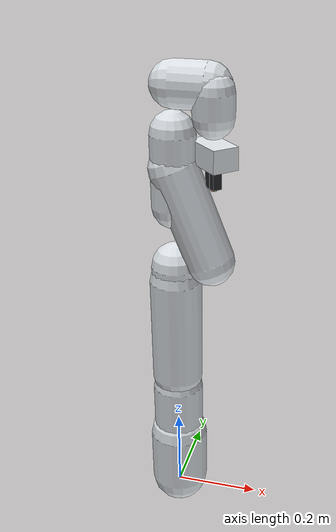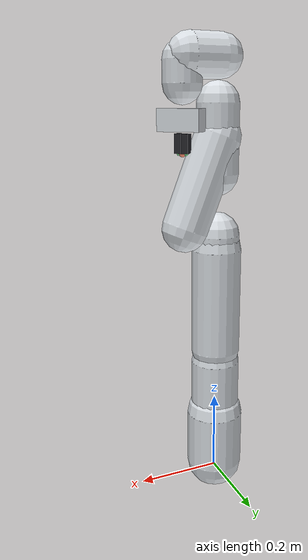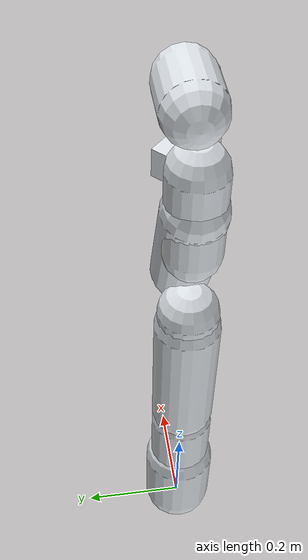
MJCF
<mujoco model="panda">

  <compiler angle="radian" autolimits="true"/>

  <default>
    <default class="panda">
      <joint axis="0 0 1" damping="5" armature="0.1" frictionloss="0.2"/>
      <geom type="capsule" contype="1" conaffinity="2" condim="4"
            friction="1 0.05 0.01" rgba="0.87 0.89 0.91 1" density="0"/>
      <motor gear="1" ctrllimited="true"/>

      <default class="panda_finger">
        <joint type="slide" axis="0 1 0" range="0 0.04" damping="30"
               armature="0.01" frictionloss="1.0"/>
        <!-- High tangential friction: primitive box pads have far less real
             contact area than the rubberized Franka pads, so grasps slip
             without it. -->
        <geom type="box" condim="4" friction="2.0 0.2 0.01"
              rgba="0.15 0.15 0.17 1" density="0"/>
      </default>
    </default>
  </default>

  <worldbody>
    <body name="link0" pos="0 0 0" childclass="panda">
      <inertial pos="-0.041 0 0.05" mass="2.92"
                diaginertia="0.0075 0.0100 0.0090"/>
      <geom name="link0_geom" fromto="0 0 0.02 0 0 0.16" size="0.07"/>

      <body name="link1" pos="0 0 0.333">
        <inertial pos="0.0039 0.0021 -0.0476" mass="2.74"
                  diaginertia="0.0180 0.0180 0.0090"/>
        <joint name="joint1" range="-2.8973 2.8973"/>
        <geom name="link1_geom" fromto="0 0 -0.19 0 0 -0.03" size="0.06"/>

        <body name="link2" quat="1 -1 0 0">
          <inertial pos="-0.0031 -0.0287 0.0035" mass="2.74"
                    diaginertia="0.0180 0.0090 0.0180"/>
          <joint name="joint2" range="-1.7628 1.7628"/>
          <geom name="link2_geom" fromto="0 0 0 0 -0.26 0" size="0.06"/>

          <body name="link3" pos="0 -0.316 0" quat="1 1 0 0">
            <inertial pos="0.0275 0.0393 -0.0665" mass="2.38"
                      diaginertia="0.0090 0.0090 0.0090"/>
            <joint name="joint3" range="-2.8973 2.8973"/>
            <geom name="link3_geom" fromto="0 0 -0.14 0 0 -0.02" size="0.055"/>

            <body name="link4" pos="0.0825 0 0" quat="1 1 0 0">
              <inertial pos="-0.0532 0.1044 0.0275" mass="2.38"
                        diaginertia="0.0090 0.0090 0.0090"/>
              <joint name="joint4" range="-3.0718 -0.0698"/>
              <geom name="link4_geom" fromto="0 0 0 -0.083 0.21 0" size="0.055"/>

              <body name="link5" pos="-0.0825 0.384 0" quat="1 -1 0 0">
                <inertial pos="-0.0120 0.0411 -0.0384" mass="2.74"
                          diaginertia="0.0290 0.0290 0.0060"/>
                <joint name="joint5" range="-2.8973 2.8973"/>
                <geom name="link5_geom" fromto="0 0 -0.26 0 0 -0.10" size="0.05"/>

                <body name="link6" quat="1 1 0 0">
                  <inertial pos="0.0601 -0.0141 -0.0105" mass="1.55"
                            diaginertia="0.0030 0.0030 0.0030"/>
                  <joint name="joint6" range="-0.0175 3.7525"/>
                  <geom name="link6_geom" fromto="0 0 -0.01 0.075 0 -0.01" size="0.05"/>

                  <body name="link7" pos="0.088 0 0" quat="1 1 0 0">
                    <inertial pos="0.0105 -0.0043 0.0616" mass="0.54"
                              diaginertia="0.0008 0.0008 0.0008"/>
                    <joint name="joint7" range="-2.8973 2.8973"/>
                    <geom name="link7_geom" fromto="0 0 0.01 0 0 0.06" size="0.045"/>

                    <!-- Flange -> hand: 0.107 m along z, rotated -45 deg about z. -->
                    <body name="hand" pos="0 0 0.107" quat="0.9238795 0 0 -0.3826834">
                      <inertial pos="-0.01 0 0.03" mass="0.73"
                                diaginertia="0.0018 0.0025 0.0017"/>
                      <geom name="hand_geom" type="box" size="0.03 0.05 0.025"
                            pos="0 0 0.03"/>

                      <!-- Tool centre point: midway between the finger pads at
                           the closed width. All reward distances use this. -->
                      <site name="eef_site" pos="0 0 0.1034" size="0.008"
                            rgba="1 0.3 0.1 0.6" group="1"/>
                      <site name="hand_site" pos="0 0 0.03" size="0.006"
                            rgba="0.2 0.6 1 0.4" group="1"/>

                      <camera name="wristview" pos="0.05 0 0.02"
                              xyaxes="0 -1 0 -0.970 0 -0.243" fovy="75"/>

                      <body name="left_finger" pos="0 0 0.0584" childclass="panda_finger">
                        <inertial pos="0 0.0145 0.0227" mass="0.015"
                                  diaginertia="2.4e-6 2.4e-6 2.4e-6"/>
                        <joint name="finger_joint1"/>
                        <geom name="left_finger_geom" size="0.010 0.008 0.022"
                              pos="0 0.0085 0.023"/>
                        <site name="left_finger_tip" pos="0 0.0085 0.045"
                              size="0.005" rgba="0.1 1 0.3 0.5" group="1"/>
                      </body>

                      <body name="right_finger" pos="0 0 0.0584" childclass="panda_finger">
                        <inertial pos="0 -0.0145 0.0227" mass="0.015"
                                  diaginertia="2.4e-6 2.4e-6 2.4e-6"/>
                        <joint name="finger_joint2" axis="0 -1 0"/>
                        <geom name="right_finger_geom" size="0.010 0.008 0.022"
                              pos="0 -0.0085 0.023"/>
                        <site name="right_finger_tip" pos="0 -0.0085 0.045"
                              size="0.005" rgba="0.1 1 0.3 0.5" group="1"/>
                      </body>
                    </body>
                  </body>
                </body>
              </body>
            </body>
          </body>
        </body>
      </body>
    </body>
  </worldbody>

  <actuator>
    <motor class="panda" name="actuator1" joint="joint1" ctrlrange="-87 87"/>
    <motor class="panda" name="actuator2" joint="joint2" ctrlrange="-87 87"/>
    <motor class="panda" name="actuator3" joint="joint3" ctrlrange="-87 87"/>
    <motor class="panda" name="actuator4" joint="joint4" ctrlrange="-87 87"/>
    <motor class="panda" name="actuator5" joint="joint5" ctrlrange="-12 12"/>
    <motor class="panda" name="actuator6" joint="joint6" ctrlrange="-12 12"/>
    <motor class="panda" name="actuator7" joint="joint7" ctrlrange="-12 12"/>

    <!-- Fingers are position-servoed; the policy commands one shared width. -->
    <position name="actuator_finger1" joint="finger_joint1" ctrlrange="0 0.04"
              kp="3000" forcerange="-100 100"/>
    <position name="actuator_finger2" joint="finger_joint2" ctrlrange="0 0.04"
              kp="3000" forcerange="-100 100"/>
  </actuator>
</mujoco>
